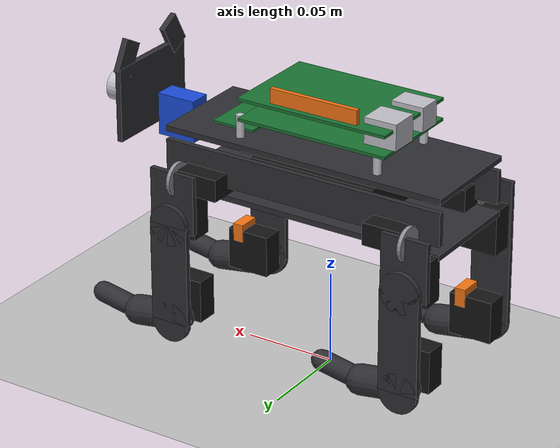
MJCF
<?xml version="1.0" encoding="utf-8"?>
<mujoco model="freenove_dog">
  <compiler angle="radian" autolimits="true"/>
  <option timestep="0.005" integrator="implicitfast" cone="elliptic" impratio="100"/>

  <visual>
    <global offwidth="1920" offheight="1080" azimuth="135" elevation="-20"/>
    <quality shadowsize="4096"/>
    <headlight ambient="0.35 0.35 0.35" diffuse="0.5 0.5 0.5"/>
  </visual>

  <default>
    <joint armature="0.0001" damping="0.002"/>
    <geom condim="3" friction="0.8 0.02 0.001"/>
    <position kp="2.0" kv="0.02" forcerange="-0.17 0.17" ctrlrange="-1.2566 1.2566"/>
    <site group="5"/>
    <default class="collision">
      <geom group="3" rgba="0.8 0.2 0.2 0.4"/>
    </default>
    <default class="mass">
      <geom group="3" contype="0" conaffinity="0" rgba="0.2 0.2 0.8 0.4"/>
    </default>
    <default class="foot">
      <geom type="sphere" size="0.006" friction="0.9 0.02 0.001" group="3" rgba="0.8 0.2 0.2 0.4"/>
    </default>
    <default class="visual">
      <geom group="2" contype="0" conaffinity="0" density="0"/>
      <default class="vis_frame"><geom material="acrylic"/></default>
      <default class="vis_servo"><geom material="servo"/></default>
      <default class="vis_horn"><geom material="horn"/></default>
      <default class="vis_label"><geom material="orange"/></default>
      <default class="vis_pcb"><geom material="pcb"/></default>
      <default class="vis_metal"><geom material="metal"/></default>
      <default class="vis_battery"><geom material="battery"/></default>
    </default>
  </default>

  <asset>
    <texture name="sky" type="skybox" builtin="gradient" rgb1="0.55 0.7 0.9" rgb2="0.15 0.2 0.3" width="512" height="512"/>
    <texture name="grid" type="2d" builtin="checker" rgb1="0.82 0.82 0.82" rgb2="0.68 0.68 0.68" width="512" height="512" mark="edge" markrgb="0.6 0.6 0.6"/>
    <material name="floor_mat" texture="grid" texrepeat="20 20" reflectance="0.08"/>
    <material name="acrylic" rgba="0.18 0.18 0.2 1" specular="0.4" shininess="0.6"/>
    <material name="servo" rgba="0.08 0.08 0.08 1" specular="0.2"/>
    <material name="horn" rgba="0.55 0.55 0.58 1" specular="0.6"/>
    <material name="orange" rgba="0.95 0.45 0.08 1"/>
    <material name="pcb" rgba="0.1 0.45 0.2 1" specular="0.3"/>
    <material name="metal" rgba="0.75 0.75 0.78 1" specular="0.8" shininess="0.8"/>
    <material name="battery" rgba="0.15 0.35 0.75 1" specular="0.5"/>
    <material name="neck" rgba="0.1 0.3 0.85 1"/>
  </asset>

  <worldbody>
    <light name="sun" pos="0.6 0.6 2" dir="-0.3 -0.3 -1" directional="true" castshadow="true" diffuse="0.6 0.6 0.6"/>
    <geom name="floor" type="plane" size="10 10 0.1" material="floor_mat"/>

    <!-- trunk frame on the four abduction axes, x forward, y left, z up -->
    <body name="trunk" pos="0 0 0.1014">
      <freejoint name="floating_base"/>
      <camera name="track" mode="trackcom" pos="0.26 -0.26 0.14" xyaxes="0.707 0.707 0 -0.25 0.25 0.935"/>
      <camera name="side" mode="trackcom" pos="0 -0.35 0.03" xyaxes="1 0 0 0 0 1"/>
      <camera name="front" mode="trackcom" pos="0.35 0 0.06" xyaxes="0 1 0 -0.15 0 1"/>
      <site name="imu" pos="0 0 0.02" size="0.005"/>

      <geom name="trunk" class="collision" type="box" size="0.075 0.028 0.022" pos="0 0 0.016" mass="0.112"/>
      <geom class="mass" type="box" size="0.035 0.02 0.01" pos="0 0 0.004" mass="0.1"/>
      <geom class="mass" type="box" size="0.0425 0.028 0.008" pos="0 0 0.034" mass="0.075"/>
      <geom class="mass" type="box" size="0.012 0.0115 0.006" pos="0.055 0.029 0" mass="0.012"/>
      <geom class="vis_servo" type="box" size="0.012 0.0115 0.006" pos="0.055 0.029 0"/>
      <geom class="vis_horn" type="cylinder" size="0.009 0.001" pos="0.0675 0.038 0" zaxis="1 0 0"/>
      <geom class="mass" type="box" size="0.012 0.0115 0.006" pos="0.055 -0.029 0" mass="0.012"/>
      <geom class="vis_servo" type="box" size="0.012 0.0115 0.006" pos="0.055 -0.029 0"/>
      <geom class="vis_horn" type="cylinder" size="0.009 0.001" pos="0.0675 -0.038 0" zaxis="1 0 0"/>
      <geom class="mass" type="box" size="0.012 0.0115 0.006" pos="-0.055 0.029 0" mass="0.012"/>
      <geom class="vis_servo" type="box" size="0.012 0.0115 0.006" pos="-0.055 0.029 0"/>
      <geom class="vis_horn" type="cylinder" size="0.009 0.001" pos="-0.0675 0.038 0" zaxis="1 0 0"/>
      <geom class="mass" type="box" size="0.012 0.0115 0.006" pos="-0.055 -0.029 0" mass="0.012"/>
      <geom class="vis_servo" type="box" size="0.012 0.0115 0.006" pos="-0.055 -0.029 0"/>
      <geom class="vis_horn" type="cylinder" size="0.009 0.001" pos="-0.0675 -0.038 0" zaxis="1 0 0"/>
      <!-- acrylic frame: bottom plate, top plate, side rails, standoffs -->
      <geom class="vis_frame" type="box" size="0.08 0.03 0.0015" pos="0 0 -0.008"/>
      <geom class="vis_frame" type="box" size="0.08 0.03 0.0015" pos="0 0 0.022"/>
      <geom class="vis_frame" type="box" size="0.08 0.0015 0.009" pos="0 0.0285 0.007"/>
      <geom class="vis_frame" type="box" size="0.08 0.0015 0.009" pos="0 -0.0285 0.007"/>
      <geom class="vis_metal" type="cylinder" size="0.0022 0.006" pos="0.04 0.022 0.03"/>
      <geom class="vis_metal" type="cylinder" size="0.0022 0.006" pos="-0.04 0.022 0.03"/>
      <geom class="vis_metal" type="cylinder" size="0.0022 0.006" pos="0.04 -0.022 0.03"/>
      <geom class="vis_metal" type="cylinder" size="0.0022 0.006" pos="-0.04 -0.022 0.03"/>
      <!-- 2x 18650 in the holder of the shield -->
      <geom class="vis_servo" type="box" size="0.036 0.02 0.009" pos="0 0 0.004"/>
      <geom class="vis_battery" type="cylinder" size="0.009 0.0325" pos="0 0.0095 0.006" zaxis="1 0 0"/>
      <geom class="vis_battery" type="cylinder" size="0.009 0.0325" pos="0 -0.0095 0.006" zaxis="1 0 0"/>
      <!-- Raspberry Pi with the robot shield -->
      <geom class="vis_pcb" type="box" size="0.0425 0.028 0.0008" pos="-0.005 0 0.036"/>
      <geom class="vis_pcb" type="box" size="0.0425 0.028 0.0008" pos="-0.005 0 0.047"/>
      <geom class="vis_metal" type="box" size="0.009 0.008 0.007" pos="-0.04 0.012 0.044"/>
      <geom class="vis_metal" type="box" size="0.009 0.0065 0.0065" pos="-0.04 -0.012 0.044"/>
      <geom class="vis_label" type="box" size="0.025 0.0012 0.004" pos="-0.005 0.024 0.052"/>
      <geom class="vis_pcb" type="box" size="0.012 0.014 0.0008" pos="0.05 0 0.024"/>

      <!-- head: S90 neck servo, ultrasonic "eyes", camera, ears -->
      <body name="head" pos="0.095 0 0.012">
        <geom class="collision" type="box" size="0.012 0.028 0.022" pos="0.008 0 0.012" mass="0.035"/>
        <geom class="visual" type="box" size="0.011 0.006 0.0115" pos="-0.004 0 0.004" material="neck"/>
        <geom class="vis_frame" type="box" size="0.0015 0.028 0.02" pos="0.016 0 0.014"/>
        <geom class="vis_metal" type="cylinder" size="0.008 0.006" pos="0.023 0.013 0.018" zaxis="1 0 0"/>
        <geom class="vis_metal" type="cylinder" size="0.008 0.006" pos="0.023 -0.013 0.018" zaxis="1 0 0"/>
        <geom class="vis_servo" type="box" size="0.003 0.005 0.005" pos="0.019 0 0.001"/>
        <geom class="vis_frame" type="box" size="0.0015 0.006 0.009" pos="0.016 0.02 0.038" euler="0.5 0 0"/>
        <geom class="vis_frame" type="box" size="0.0015 0.006 0.009" pos="0.016 -0.02 0.038" euler="-0.5 0 0"/>
      </body>

      <body name="FL_hip" pos="0.068 0.038 0">
        <joint name="FL_hip_roll" axis="1 0 0" range="-1.2566 1.2566"/>
        <geom class="mass" type="box" size="0.0115 0.006 0.012" pos="0 -0.004 -0.019" mass="0.017"/>
        <geom class="vis_frame" type="box" size="0.013 0.0015 0.016" pos="0 0.0035 -0.011"/>
        <geom class="vis_servo" type="box" size="0.0115 0.006 0.012" pos="0 -0.004 -0.019"/>
        <geom class="vis_horn" type="cylinder" size="0.009 0.001" pos="0 0.0055 -0.023" zaxis="0 1 0"/>
        <body name="FL_thigh" pos="0 0 -0.023">
          <joint name="FL_hip_pitch" axis="0 1 0" range="-1.2566 1.2566"/>
          <geom class="collision" type="capsule" size="0.007" fromto="0 0.007 -0.004 0 0.007 -0.046" mass="0.008"/>
          <geom class="mass" type="box" size="0.012 0.006 0.0115" pos="0 -0.0075 -0.045" mass="0.012"/>
          <geom class="vis_frame" type="box" size="0.011 0.0015 0.0275" pos="0 0.0075 -0.0275"/>
          <geom class="vis_frame" type="cylinder" size="0.011 0.0015" pos="0 0.0075 0" zaxis="0 1 0"/>
          <geom class="vis_frame" type="cylinder" size="0.011 0.0015" pos="0 0.0075 -0.055" zaxis="0 1 0"/>
          <geom class="vis_servo" type="box" size="0.012 0.006 0.0115" pos="0 -0.0075 -0.045"/>
          <geom class="vis_label" type="box" size="0.003 0.0062 0.005" pos="0.006 -0.0075 -0.035"/>
          <body name="FL_shank" pos="0 0 -0.055">
            <joint name="FL_knee" axis="0 1 0" range="-1.2566 1.2566"/>
            <geom class="collision" type="capsule" size="0.0045" fromto="0.008 0 0 0.045 0 0" mass="0.007"/>
            <geom name="FL_foot" class="foot" pos="0.049 0 0" mass="0.001"/>
            <geom class="vis_horn" type="cylinder" size="0.009 0.001" pos="0 0.0035 0" zaxis="0 1 0"/>
            <geom class="vis_frame" type="capsule" size="0.008 0.0015" fromto="0 0 0 0.026 0 -0.004"/>
            <geom class="vis_frame" type="capsule" size="0.0055 0.0015" fromto="0.026 0 -0.004 0.049 0 0"/>
            <geom class="vis_label" type="box" size="0.006 0.0017 0.002" pos="0.028 0 -0.002"/>
            <site name="FL_foot" pos="0.055 0 0" size="0.003"/>
            <site name="FL_touch" type="sphere" pos="0.049 0 0" size="0.0075" group="4"/>
          </body>
        </body>
      </body>
      <body name="FR_hip" pos="0.068 -0.038 0">
        <joint name="FR_hip_roll" axis="1 0 0" range="-1.2566 1.2566"/>
        <geom class="mass" type="box" size="0.0115 0.006 0.012" pos="0 0.004 -0.019" mass="0.017"/>
        <geom class="vis_frame" type="box" size="0.013 0.0015 0.016" pos="0 -0.0035 -0.011"/>
        <geom class="vis_servo" type="box" size="0.0115 0.006 0.012" pos="0 0.004 -0.019"/>
        <geom class="vis_horn" type="cylinder" size="0.009 0.001" pos="0 -0.0055 -0.023" zaxis="0 1 0"/>
        <body name="FR_thigh" pos="0 0 -0.023">
          <joint name="FR_hip_pitch" axis="0 1 0" range="-1.2566 1.2566"/>
          <geom class="collision" type="capsule" size="0.007" fromto="0 -0.007 -0.004 0 -0.007 -0.046" mass="0.008"/>
          <geom class="mass" type="box" size="0.012 0.006 0.0115" pos="0 0.0075 -0.045" mass="0.012"/>
          <geom class="vis_frame" type="box" size="0.011 0.0015 0.0275" pos="0 -0.0075 -0.0275"/>
          <geom class="vis_frame" type="cylinder" size="0.011 0.0015" pos="0 -0.0075 0" zaxis="0 1 0"/>
          <geom class="vis_frame" type="cylinder" size="0.011 0.0015" pos="0 -0.0075 -0.055" zaxis="0 1 0"/>
          <geom class="vis_servo" type="box" size="0.012 0.006 0.0115" pos="0 0.0075 -0.045"/>
          <geom class="vis_label" type="box" size="0.003 0.0062 0.005" pos="0.006 0.0075 -0.035"/>
          <body name="FR_shank" pos="0 0 -0.055">
            <joint name="FR_knee" axis="0 1 0" range="-1.2566 1.2566"/>
            <geom class="collision" type="capsule" size="0.0045" fromto="0.008 0 0 0.045 0 0" mass="0.007"/>
            <geom name="FR_foot" class="foot" pos="0.049 0 0" mass="0.001"/>
            <geom class="vis_horn" type="cylinder" size="0.009 0.001" pos="0 -0.0035 0" zaxis="0 1 0"/>
            <geom class="vis_frame" type="capsule" size="0.008 0.0015" fromto="0 0 0 0.026 0 -0.004"/>
            <geom class="vis_frame" type="capsule" size="0.0055 0.0015" fromto="0.026 0 -0.004 0.049 0 0"/>
            <geom class="vis_label" type="box" size="0.006 0.0017 0.002" pos="0.028 0 -0.002"/>
            <site name="FR_foot" pos="0.055 0 0" size="0.003"/>
            <site name="FR_touch" type="sphere" pos="0.049 0 0" size="0.0075" group="4"/>
          </body>
        </body>
      </body>
      <body name="RL_hip" pos="-0.068 0.038 0">
        <joint name="RL_hip_roll" axis="1 0 0" range="-1.2566 1.2566"/>
        <geom class="mass" type="box" size="0.0115 0.006 0.012" pos="0 -0.004 -0.019" mass="0.017"/>
        <geom class="vis_frame" type="box" size="0.013 0.0015 0.016" pos="0 0.0035 -0.011"/>
        <geom class="vis_servo" type="box" size="0.0115 0.006 0.012" pos="0 -0.004 -0.019"/>
        <geom class="vis_horn" type="cylinder" size="0.009 0.001" pos="0 0.0055 -0.023" zaxis="0 1 0"/>
        <body name="RL_thigh" pos="0 0 -0.023">
          <joint name="RL_hip_pitch" axis="0 1 0" range="-1.2566 1.2566"/>
          <geom class="collision" type="capsule" size="0.007" fromto="0 0.007 -0.004 0 0.007 -0.046" mass="0.008"/>
          <geom class="mass" type="box" size="0.012 0.006 0.0115" pos="0 -0.0075 -0.045" mass="0.012"/>
          <geom class="vis_frame" type="box" size="0.011 0.0015 0.0275" pos="0 0.0075 -0.0275"/>
          <geom class="vis_frame" type="cylinder" size="0.011 0.0015" pos="0 0.0075 0" zaxis="0 1 0"/>
          <geom class="vis_frame" type="cylinder" size="0.011 0.0015" pos="0 0.0075 -0.055" zaxis="0 1 0"/>
          <geom class="vis_servo" type="box" size="0.012 0.006 0.0115" pos="0 -0.0075 -0.045"/>
          <geom class="vis_label" type="box" size="0.003 0.0062 0.005" pos="0.006 -0.0075 -0.035"/>
          <body name="RL_shank" pos="0 0 -0.055">
            <joint name="RL_knee" axis="0 1 0" range="-1.2566 1.2566"/>
            <geom class="collision" type="capsule" size="0.0045" fromto="0.008 0 0 0.045 0 0" mass="0.007"/>
            <geom name="RL_foot" class="foot" pos="0.049 0 0" mass="0.001"/>
            <geom class="vis_horn" type="cylinder" size="0.009 0.001" pos="0 0.0035 0" zaxis="0 1 0"/>
            <geom class="vis_frame" type="capsule" size="0.008 0.0015" fromto="0 0 0 0.026 0 -0.004"/>
            <geom class="vis_frame" type="capsule" size="0.0055 0.0015" fromto="0.026 0 -0.004 0.049 0 0"/>
            <geom class="vis_label" type="box" size="0.006 0.0017 0.002" pos="0.028 0 -0.002"/>
            <site name="RL_foot" pos="0.055 0 0" size="0.003"/>
            <site name="RL_touch" type="sphere" pos="0.049 0 0" size="0.0075" group="4"/>
          </body>
        </body>
      </body>
      <body name="RR_hip" pos="-0.068 -0.038 0">
        <joint name="RR_hip_roll" axis="1 0 0" range="-1.2566 1.2566"/>
        <geom class="mass" type="box" size="0.0115 0.006 0.012" pos="0 0.004 -0.019" mass="0.017"/>
        <geom class="vis_frame" type="box" size="0.013 0.0015 0.016" pos="0 -0.0035 -0.011"/>
        <geom class="vis_servo" type="box" size="0.0115 0.006 0.012" pos="0 0.004 -0.019"/>
        <geom class="vis_horn" type="cylinder" size="0.009 0.001" pos="0 -0.0055 -0.023" zaxis="0 1 0"/>
        <body name="RR_thigh" pos="0 0 -0.023">
          <joint name="RR_hip_pitch" axis="0 1 0" range="-1.2566 1.2566"/>
          <geom class="collision" type="capsule" size="0.007" fromto="0 -0.007 -0.004 0 -0.007 -0.046" mass="0.008"/>
          <geom class="mass" type="box" size="0.012 0.006 0.0115" pos="0 0.0075 -0.045" mass="0.012"/>
          <geom class="vis_frame" type="box" size="0.011 0.0015 0.0275" pos="0 -0.0075 -0.0275"/>
          <geom class="vis_frame" type="cylinder" size="0.011 0.0015" pos="0 -0.0075 0" zaxis="0 1 0"/>
          <geom class="vis_frame" type="cylinder" size="0.011 0.0015" pos="0 -0.0075 -0.055" zaxis="0 1 0"/>
          <geom class="vis_servo" type="box" size="0.012 0.006 0.0115" pos="0 0.0075 -0.045"/>
          <geom class="vis_label" type="box" size="0.003 0.0062 0.005" pos="0.006 0.0075 -0.035"/>
          <body name="RR_shank" pos="0 0 -0.055">
            <joint name="RR_knee" axis="0 1 0" range="-1.2566 1.2566"/>
            <geom class="collision" type="capsule" size="0.0045" fromto="0.008 0 0 0.045 0 0" mass="0.007"/>
            <geom name="RR_foot" class="foot" pos="0.049 0 0" mass="0.001"/>
            <geom class="vis_horn" type="cylinder" size="0.009 0.001" pos="0 -0.0035 0" zaxis="0 1 0"/>
            <geom class="vis_frame" type="capsule" size="0.008 0.0015" fromto="0 0 0 0.026 0 -0.004"/>
            <geom class="vis_frame" type="capsule" size="0.0055 0.0015" fromto="0.026 0 -0.004 0.049 0 0"/>
            <geom class="vis_label" type="box" size="0.006 0.0017 0.002" pos="0.028 0 -0.002"/>
            <site name="RR_foot" pos="0.055 0 0" size="0.003"/>
            <site name="RR_touch" type="sphere" pos="0.049 0 0" size="0.0075" group="4"/>
          </body>
        </body>
      </body>
    </body>
  </worldbody>

  <actuator>
    <position name="FL_hip_roll" joint="FL_hip_roll"/>
    <position name="FL_hip_pitch" joint="FL_hip_pitch"/>
    <position name="FL_knee" joint="FL_knee"/>
    <position name="FR_hip_roll" joint="FR_hip_roll"/>
    <position name="FR_hip_pitch" joint="FR_hip_pitch"/>
    <position name="FR_knee" joint="FR_knee"/>
    <position name="RL_hip_roll" joint="RL_hip_roll"/>
    <position name="RL_hip_pitch" joint="RL_hip_pitch"/>
    <position name="RL_knee" joint="RL_knee"/>
    <position name="RR_hip_roll" joint="RR_hip_roll"/>
    <position name="RR_hip_pitch" joint="RR_hip_pitch"/>
    <position name="RR_knee" joint="RR_knee"/>
  </actuator>

  <sensor>
    <gyro name="imu_gyro" site="imu"/>
    <accelerometer name="imu_acc" site="imu"/>
    <framequat name="imu_quat" objtype="site" objname="imu"/>
    <touch name="FL_touch" site="FL_touch"/>
    <touch name="FR_touch" site="FR_touch"/>
    <touch name="RL_touch" site="RL_touch"/>
    <touch name="RR_touch" site="RR_touch"/>
  </sensor>

  <keyframe>
    <key name="home" qpos="0 0 0.1014 1 0 0 0 0.1007 0.6635 -0.01606 -0.1007 0.6635 -0.01606 0.1007 0.6635 -0.01606 -0.1007 0.6635 -0.01606" ctrl="0.1007 0.6635 -0.01606 -0.1007 0.6635 -0.01606 0.1007 0.6635 -0.01606 -0.1007 0.6635 -0.01606"/>
  </keyframe>
</mujoco>
